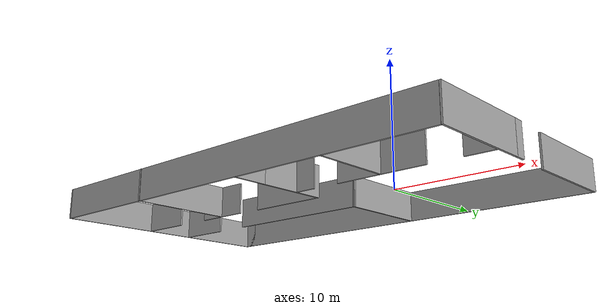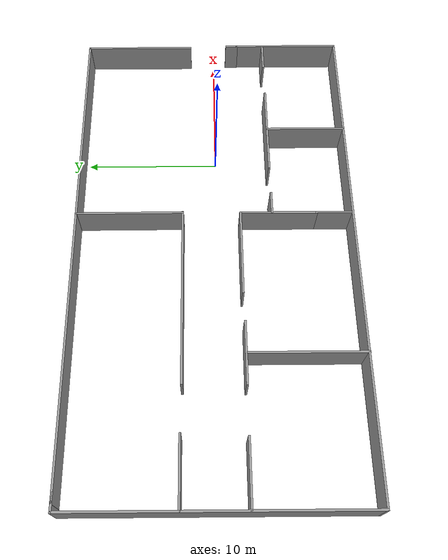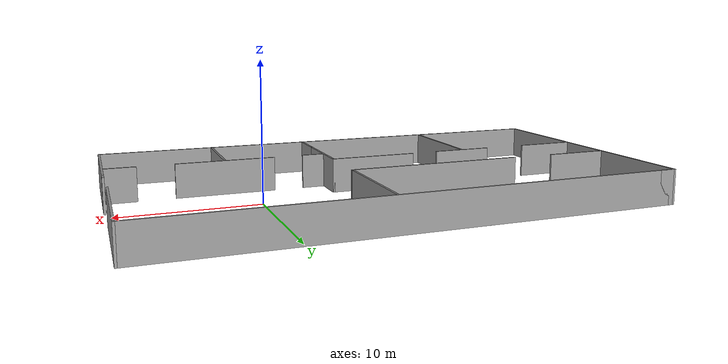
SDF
<?xml version='1.0'?>
<sdf version='1.6'>
  <model name='hospital_wall'>
    <pose frame=''>-8.01766 0.163229 0 0 -0 0</pose>
    <link name='Wall_12'>
      <collision name='Wall_12_Collision'>
        <geometry>
          <box>
            <size>13 0.15 2.5</size>
          </box>
        </geometry>
        <pose frame=''>0 0 1.25 0 -0 0</pose>
      </collision>
      <visual name='Wall_12_Visual'>
        <pose frame=''>0 0 1.25 0 -0 0</pose>
        <geometry>
          <box>
            <size>13 0.15 2.5</size>
          </box>
        </geometry>
        <material>
          <script>
            <uri>file://media/materials/scripts/gazebo.material</uri>
            <name>Gazebo/Grey</name>
          </script>
          <ambient>1 1 1 1</ambient>
        </material>
        <meta>
          <layer>0</layer>
        </meta>
      </visual>
      <pose frame=''>-4.059 2.35553 0 0 -0 0</pose>
    </link>
    <link name='Wall_13'>
      <collision name='Wall_13_Collision'>
        <geometry>
          <box>
            <size>7.9336 0.15 2.5</size>
          </box>
        </geometry>
        <pose frame=''>0 0 1.25 0 -0 0</pose>
      </collision>
      <visual name='Wall_13_Visual'>
        <pose frame=''>0 0 1.25 0 -0 0</pose>
        <geometry>
          <box>
            <size>7.9336 0.15 2.5</size>
          </box>
        </geometry>
        <material>
          <script>
            <uri>file://media/materials/scripts/gazebo.material</uri>
            <name>Gazebo/Grey</name>
          </script>
          <ambient>1 1 1 1</ambient>
        </material>
        <meta>
          <layer>0</layer>
        </meta>
      </visual>
      <pose frame=''>2.32396 6.24724 0 0 -0 1.57374</pose>
    </link>
    <link name='Wall_15'>
      <collision name='Wall_15_Collision'>
        <geometry>
          <box>
            <size>4.5 0.15 2.5</size>
          </box>
        </geometry>
        <pose frame=''>0 0 1.25 0 -0 0</pose>
      </collision>
      <visual name='Wall_15_Visual'>
        <pose frame=''>0 0 1.25 0 -0 0</pose>
        <geometry>
          <box>
            <size>4.5 0.15 2.5</size>
          </box>
        </geometry>
        <material>
          <script>
            <uri>file://media/materials/scripts/gazebo.material</uri>
            <name>Gazebo/Grey</name>
          </script>
          <ambient>1 1 1 1</ambient>
        </material>
        <meta>
          <layer>0</layer>
        </meta>
      </visual>
      <pose frame=''>-16.1378 -1.95779 0 0 -0 0</pose>
    </link>
    <link name='Wall_18'>
      <collision name='Wall_18_Collision'>
        <geometry>
          <box>
            <size>4.5 0.15 2.5</size>
          </box>
        </geometry>
        <pose frame=''>0 0 1.25 0 -0 0</pose>
      </collision>
      <visual name='Wall_18_Visual'>
        <pose frame=''>0 0 1.25 0 -0 0</pose>
        <geometry>
          <box>
            <size>4.5 0.15 2.5</size>
          </box>
        </geometry>
        <material>
          <script>
            <uri>file://media/materials/scripts/gazebo.material</uri>
            <name>Gazebo/Grey</name>
          </script>
          <ambient>1 1 1 1</ambient>
        </material>
        <meta>
          <layer>0</layer>
        </meta>
      </visual>
      <pose frame=''>-8.38684 -1.96157 0 0 -0 0</pose>
    </link>
    <link name='Wall_2'>
      <collision name='Wall_2_Collision'>
        <geometry>
          <box>
            <size>36.25 0.15 2.5</size>
          </box>
        </geometry>
        <pose frame=''>0 0 1.25 0 -0 0</pose>
      </collision>
      <visual name='Wall_2_Visual'>
        <pose frame=''>0 0 1.25 0 -0 0</pose>
        <geometry>
          <box>
            <size>36.25 0.15 2.5</size>
          </box>
        </geometry>
        <material>
          <script>
            <uri>file://media/materials/scripts/gazebo.material</uri>
            <name>Gazebo/Grey</name>
          </script>
          <ambient>1 1 1 1</ambient>
        </material>
        <meta>
          <layer>0</layer>
        </meta>
      </visual>
      <pose frame=''>0.182659 10.1898 0 0 -0 0</pose>
    </link>
    <link name='Wall_23'>
      <collision name='Wall_23_Collision'>
        <geometry>
          <box>
            <size>6.5 0.15 2.5</size>
          </box>
        </geometry>
        <pose frame=''>0 0 1.25 0 -0 0</pose>
      </collision>
      <visual name='Wall_23_Visual'>
        <pose frame=''>0 0 1.25 0 -0 0</pose>
        <geometry>
          <box>
            <size>6.5 0.15 2.5</size>
          </box>
        </geometry>
        <material>
          <script>
            <uri>file://media/materials/scripts/gazebo.material</uri>
            <name>Gazebo/Grey</name>
          </script>
          <ambient>1 1 1 1</ambient>
        </material>
        <meta>
          <layer>0</layer>
        </meta>
      </visual>
      <pose frame=''>-0.875709 -1.89121 0 0 -0 0</pose>
    </link>
    <link name='Wall_24'>
      <collision name='Wall_24_Collision'>
        <geometry>
          <box>
            <size>5.75 0.15 2.5</size>
          </box>
        </geometry>
        <pose frame=''>0 0 1.25 0 -0 0</pose>
      </collision>
      <visual name='Wall_24_Visual'>
        <pose frame=''>0 0 1.25 0 -0 0</pose>
        <geometry>
          <box>
            <size>5.75 0.15 2.5</size>
          </box>
        </geometry>
        <material>
          <script>
            <uri>file://media/materials/scripts/gazebo.material</uri>
            <name>Gazebo/Grey</name>
          </script>
          <ambient>1 1 1 1</ambient>
        </material>
        <meta>
          <layer>0</layer>
        </meta>
      </visual>
      <pose frame=''>2.29929 -4.69121 0 0 -0 -1.5708</pose>
    </link>
    <link name='Wall_25'>
      <collision name='Wall_25_Collision'>
        <geometry>
          <box>
            <size>2.75 0.15 2.5</size>
          </box>
        </geometry>
        <pose frame=''>0 0 1.25 0 -0 0</pose>
      </collision>
      <visual name='Wall_25_Visual'>
        <pose frame=''>0 0 1.25 0 -0 0</pose>
        <geometry>
          <box>
            <size>2.75 0.15 2.5</size>
          </box>
        </geometry>
        <material>
          <script>
            <uri>file://media/materials/scripts/gazebo.material</uri>
            <name>Gazebo/Grey</name>
          </script>
          <ambient>1 1 1 1</ambient>
        </material>
        <meta>
          <layer>0</layer>
        </meta>
      </visual>
      <pose frame=''>2.29929 -8.79121 0 0 -0 -1.5708</pose>
    </link>
    <link name='Wall_33'>
      <collision name='Wall_33_Collision'>
        <geometry>
          <box>
            <size>8.25 0.15 2.5</size>
          </box>
        </geometry>
        <pose frame=''>0 0 1.25 0 -0 0</pose>
      </collision>
      <visual name='Wall_33_Visual'>
        <pose frame=''>0 0 1.25 0 -0 0</pose>
        <geometry>
          <box>
            <size>8.25 0.15 2.5</size>
          </box>
        </geometry>
        <material>
          <script>
            <uri>file://media/materials/scripts/gazebo.material</uri>
            <name>Gazebo/Grey</name>
          </script>
          <ambient>1 1 1 1</ambient>
        </material>
        <meta>
          <layer>0</layer>
        </meta>
      </visual>
      <pose frame=''>-8.42399 -6.13981 0 0 -0 -1.5708</pose>
    </link>
    <link name='Wall_35'>
      <collision name='Wall_35_Collision'>
        <geometry>
          <box>
            <size>8.5 0.15 2.5</size>
          </box>
        </geometry>
        <pose frame=''>0 0 1.25 0 -0 0</pose>
      </collision>
      <visual name='Wall_35_Visual'>
        <pose frame=''>0 0 1.25 0 -0 0</pose>
        <geometry>
          <box>
            <size>8.5 0.15 2.5</size>
          </box>
        </geometry>
        <material>
          <script>
            <uri>file://media/materials/scripts/gazebo.material</uri>
            <name>Gazebo/Grey</name>
          </script>
          <ambient>1 1 1 1</ambient>
        </material>
        <meta>
          <layer>0</layer>
        </meta>
      </visual>
      <pose frame=''>18.2327 6.01481 0 0 -0 -1.5708</pose>
    </link>
    <link name='Wall_37'>
      <collision name='Wall_37_Collision'>
        <geometry>
          <box>
            <size>8.25 0.15 2.5</size>
          </box>
        </geometry>
        <pose frame=''>0 0 1.25 0 -0 0</pose>
      </collision>
      <visual name='Wall_37_Visual'>
        <pose frame=''>0 0 1.25 0 -0 0</pose>
        <geometry>
          <box>
            <size>8.25 0.15 2.5</size>
          </box>
        </geometry>
        <material>
          <script>
            <uri>file://media/materials/scripts/gazebo.material</uri>
            <name>Gazebo/Grey</name>
          </script>
          <ambient>1 1 1 1</ambient>
        </material>
        <meta>
          <layer>0</layer>
        </meta>
      </visual>
      <pose frame=''>18.3673 -6.09412 0 0 -0 -1.5708</pose>
    </link>
    <link name='Wall_39'>
      <collision name='Wall_39_Collision'>
        <geometry>
          <box>
            <size>1 0.15 2.5</size>
          </box>
        </geometry>
        <pose frame=''>0 0 1.25 0 -0 0</pose>
      </collision>
      <visual name='Wall_39_Visual'>
        <pose frame=''>0 0 1.25 0 -0 0</pose>
        <geometry>
          <box>
            <size>1 0.15 2.5</size>
          </box>
        </geometry>
        <material>
          <script>
            <uri>file://media/materials/scripts/gazebo.material</uri>
            <name>Gazebo/Grey</name>
          </script>
          <ambient>1 1 1 1</ambient>
        </material>
        <meta>
          <layer>0</layer>
        </meta>
      </visual>
      <pose frame=''>18.3673 -1.61912 0 0 -0 1.5708</pose>
    </link>
    <link name='Wall_4'>
      <collision name='Wall_4_Collision'>
        <geometry>
          <box>
            <size>36.75 0.15 2.5</size>
          </box>
        </geometry>
        <pose frame=''>0 0 1.25 0 -0 0</pose>
      </collision>
      <visual name='Wall_4_Visual'>
        <pose frame=''>0 0 1.25 0 -0 0</pose>
        <geometry>
          <box>
            <size>36.75 0.15 2.5</size>
          </box>
        </geometry>
        <material>
          <script>
            <uri>file://media/materials/scripts/gazebo.material</uri>
            <name>Gazebo/Grey</name>
          </script>
          <ambient>1 1 1 1</ambient>
        </material>
        <meta>
          <layer>0</layer>
        </meta>
      </visual>
      <pose frame=''>-0.067341 -10.1602 0 0 -0 3.14159</pose>
    </link>
    <link name='Wall_42'>
      <collision name='Wall_42_Collision'>
        <geometry>
          <box>
            <size>1.75 0.15 2.5</size>
          </box>
        </geometry>
        <pose frame=''>0 0 1.25 0 -0 0</pose>
      </collision>
      <visual name='Wall_42_Visual'>
        <pose frame=''>0 0 1.25 0 -0 0</pose>
        <geometry>
          <box>
            <size>1.75 0.15 2.5</size>
          </box>
        </geometry>
        <material>
          <script>
            <uri>file://media/materials/scripts/gazebo.material</uri>
            <name>Gazebo/Grey</name>
          </script>
          <ambient>1 1 1 1</ambient>
        </material>
        <meta>
          <layer>0</layer>
        </meta>
      </visual>
      <pose frame=''>3.14625 -4.21273 0 0 -0 0</pose>
    </link>
    <link name='Wall_44'>
      <collision name='Wall_44_Collision'>
        <geometry>
          <box>
            <size>7.25 0.15 2.5</size>
          </box>
        </geometry>
        <pose frame=''>0 0 1.25 0 -0 0</pose>
      </collision>
      <visual name='Wall_44_Visual'>
        <pose frame=''>0 0 1.25 0 -0 0</pose>
        <geometry>
          <box>
            <size>7.25 0.15 2.5</size>
          </box>
        </geometry>
        <material>
          <script>
            <uri>file://media/materials/scripts/gazebo.material</uri>
            <name>Gazebo/Grey</name>
          </script>
          <ambient>1 1 1 1</ambient>
        </material>
        <meta>
          <layer>0</layer>
        </meta>
      </visual>
      <pose frame=''>9.81779 -4.19239 0 0 -0 0</pose>
    </link>
    <link name='Wall_46'>
      <collision name='Wall_46_Collision'>
        <geometry>
          <box>
            <size>2.25 0.15 2.5</size>
          </box>
        </geometry>
        <pose frame=''>0 0 1.25 0 -0 0</pose>
      </collision>
      <visual name='Wall_46_Visual'>
        <pose frame=''>0 0 1.25 0 -0 0</pose>
        <geometry>
          <box>
            <size>2.25 0.15 2.5</size>
          </box>
        </geometry>
        <material>
          <script>
            <uri>file://media/materials/scripts/gazebo.material</uri>
            <name>Gazebo/Grey</name>
          </script>
          <ambient>1 1 1 1</ambient>
        </material>
        <meta>
          <layer>0</layer>
        </meta>
      </visual>
      <pose frame=''>17.1923 -4.17205 0 0 -0 0</pose>
    </link>
    <link name='Wall_48'>
      <collision name='Wall_48_Collision'>
        <geometry>
          <box>
            <size>6 0.15 2.5</size>
          </box>
        </geometry>
        <pose frame=''>0 0 1.25 0 -0 0</pose>
      </collision>
      <visual name='Wall_48_Visual'>
        <pose frame=''>0 0 1.25 0 -0 0</pose>
        <geometry>
          <box>
            <size>6 0.15 2.5</size>
          </box>
        </geometry>
        <material>
          <script>
            <uri>file://media/materials/scripts/gazebo.material</uri>
            <name>Gazebo/Grey</name>
          </script>
          <ambient>1 1 1 1</ambient>
        </material>
        <meta>
          <layer>0</layer>
        </meta>
      </visual>
      <pose frame=''>9.85488 -7.17819 0 0 -0 -1.5708</pose>
    </link>
    <link name='Wall_5'>
      <collision name='Wall_5_Collision'>
        <geometry>
          <box>
            <size>20.5 0.15 2.5</size>
          </box>
        </geometry>
        <pose frame=''>0 0 1.25 0 -0 0</pose>
      </collision>
      <visual name='Wall_5_Visual'>
        <pose frame=''>0 0 1.25 0 -0 0</pose>
        <geometry>
          <box>
            <size>20.5 0.15 2.5</size>
          </box>
        </geometry>
        <material>
          <script>
            <uri>file://media/materials/scripts/gazebo.material</uri>
            <name>Gazebo/Grey</name>
          </script>
          <ambient>1 1 1 1</ambient>
        </material>
        <meta>
          <layer>0</layer>
        </meta>
      </visual>
      <pose frame=''>-18.3673 0.014811 0 0 -0 1.5708</pose>
    </link>
    <link name='Wall_7'>
      <collision name='Wall_7_Collision'>
        <geometry>
          <box>
            <size>1.25 0.15 2.5</size>
          </box>
        </geometry>
        <pose frame=''>0 0 1.25 0 -0 0</pose>
      </collision>
      <visual name='Wall_7_Visual'>
        <pose frame=''>0 0 1.25 0 -0 0</pose>
        <geometry>
          <box>
            <size>1.25 0.15 2.5</size>
          </box>
        </geometry>
        <material>
          <script>
            <uri>file://media/materials/scripts/gazebo.material</uri>
            <name>Gazebo/Grey</name>
          </script>
          <ambient>1 1 1 1</ambient>
        </material>
        <meta>
          <layer>0</layer>
        </meta>
      </visual>
      <pose frame=''>-17.8173 10.1898 0 0 -0 0</pose>
    </link>
    <link name='Wall_9'>
      <collision name='Wall_9_Collision'>
        <geometry>
          <box>
            <size>4.75 0.15 2.5</size>
          </box>
        </geometry>
        <pose frame=''>0 0 1.25 0 -0 0</pose>
      </collision>
      <visual name='Wall_9_Visual'>
        <pose frame=''>0 0 1.25 0 -0 0</pose>
        <geometry>
          <box>
            <size>4.75 0.15 2.5</size>
          </box>
        </geometry>
        <material>
          <script>
            <uri>file://media/materials/scripts/gazebo.material</uri>
            <name>Gazebo/Grey</name>
          </script>
          <ambient>1 1 1 1</ambient>
        </material>
        <meta>
          <layer>0</layer>
        </meta>
      </visual>
      <pose frame=''>-16.0489 2.43195 0 0 -0 0</pose>
    </link>
    <static>1</static>
  </model>
</sdf>
